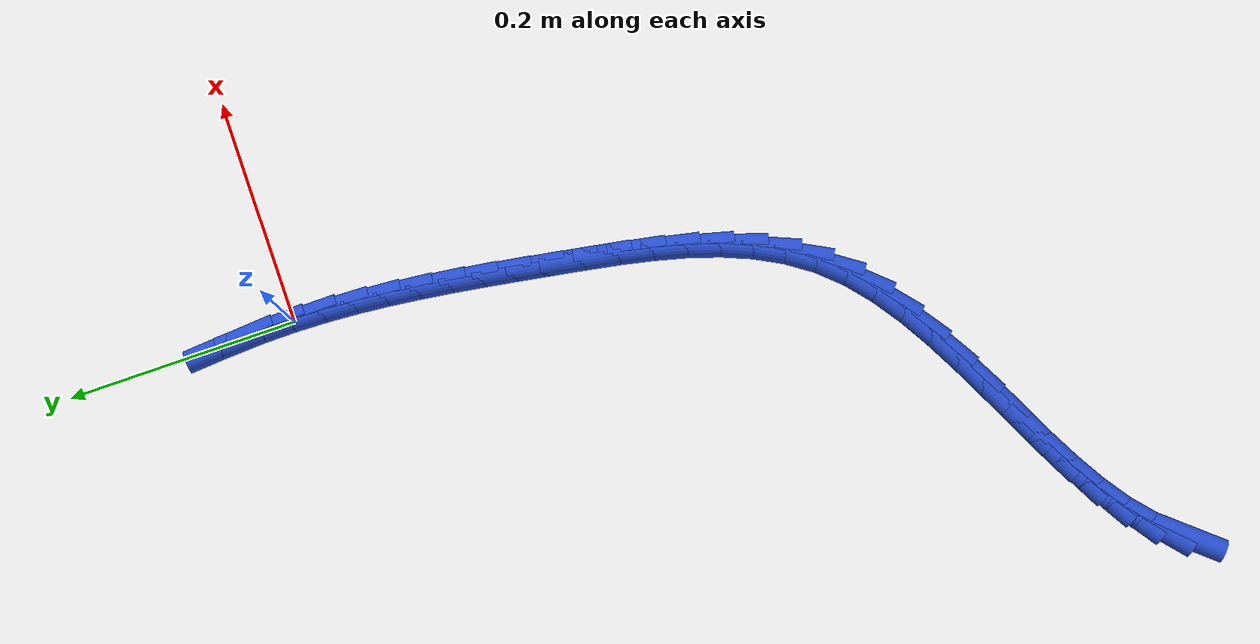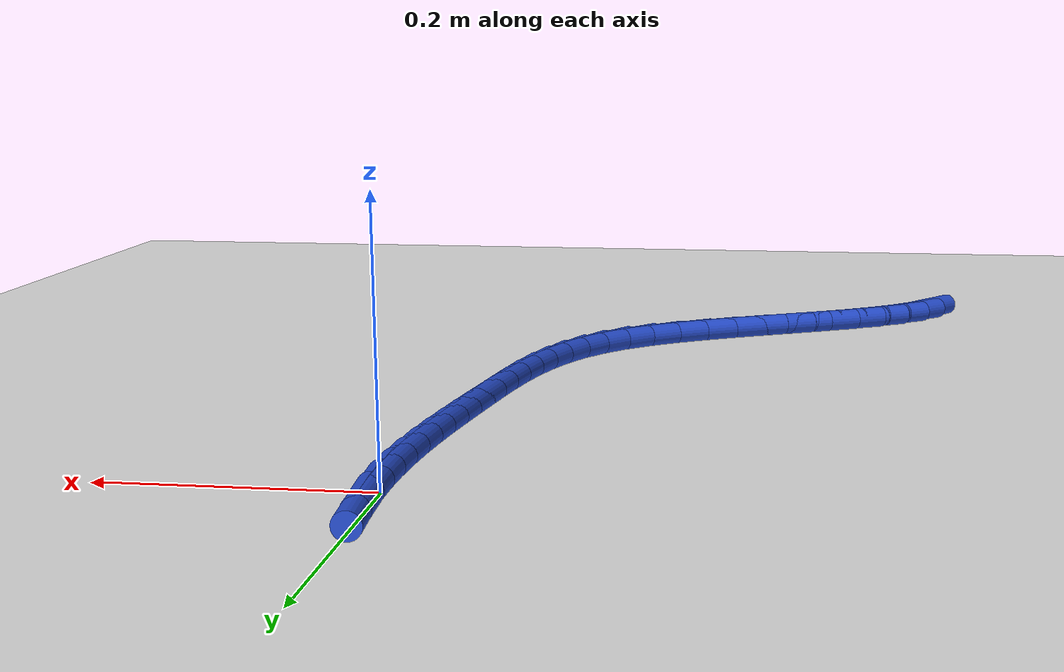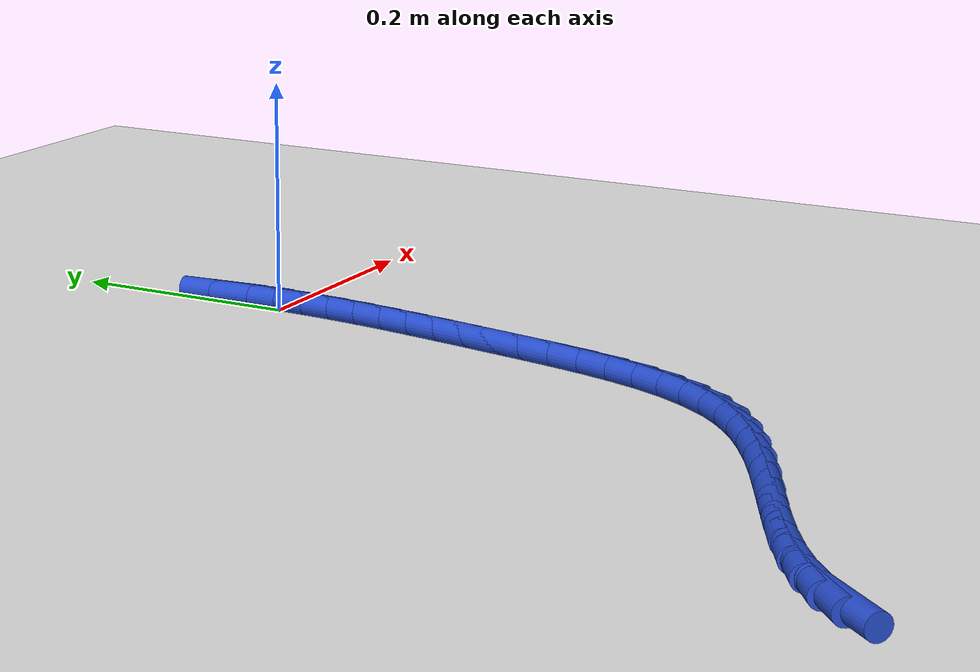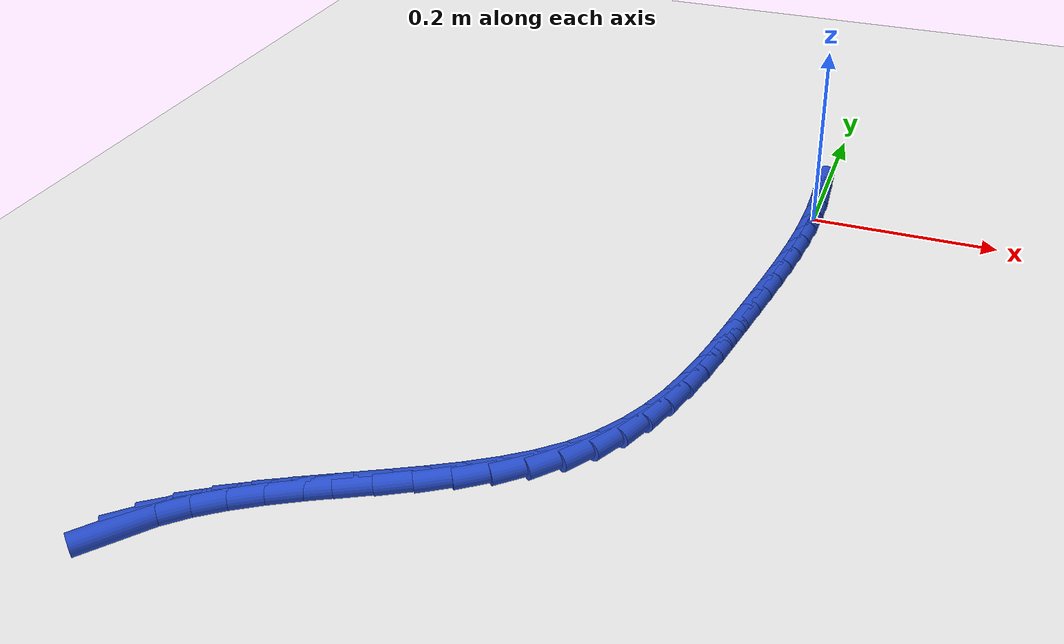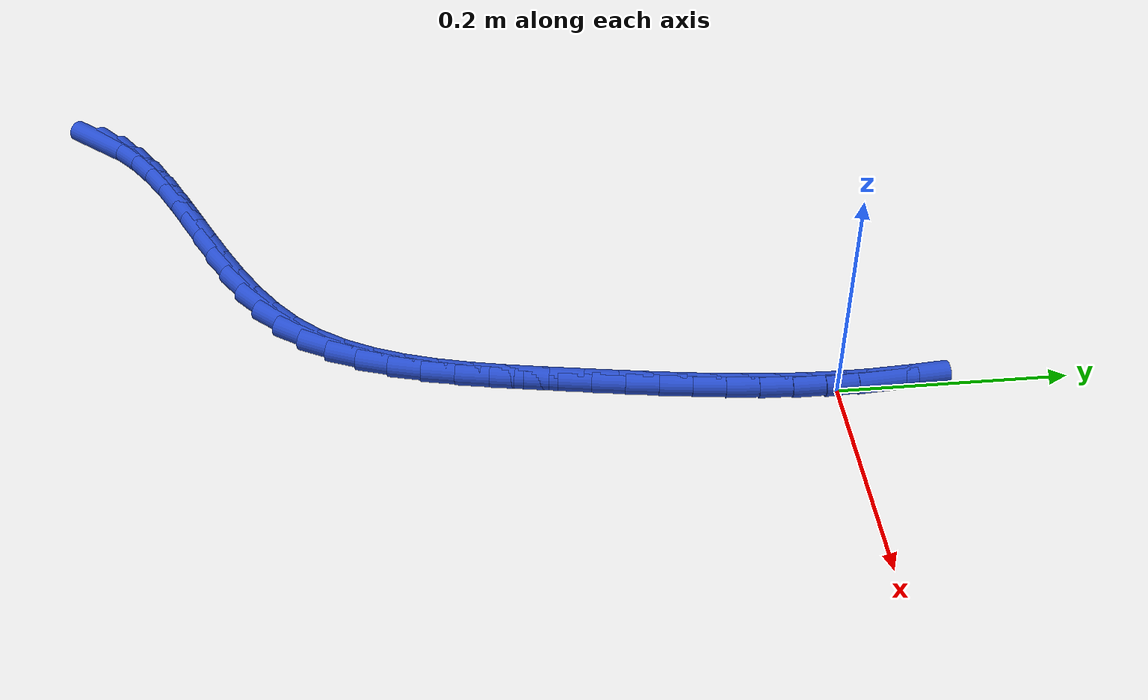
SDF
<sdf version="1.6">
 <world name="default">
  <model name="ground_plane">
   <static>1</static>
   <link name="link">
    <collision name="collision">
     <geometry><plane><normal>0 0 1</normal><size>100 100</size></plane></geometry>
     <surface><friction><ode><mu>100</mu><mu2>50</mu2></ode></friction></surface>
    </collision>
    <visual name="visual">
     <cast_shadows>0</cast_shadows>
     <geometry><plane><normal>0 0 1</normal><size>100 100</size></plane></geometry>
     <material>
      <script><uri>file://media/materials/scripts/gazebo.material</uri><name>Gazebo/WhiteGlow</name></script>
     </material>
    </visual>
   </link>
  </model>
  <model name="line">
   <link name="link_0">
    <pose>-8.673617379884035e-18 -6.245004513516506e-17 0.01 0 1.57 -1.5623915560783812</pose>
    <collision name="collision">
     <geometry><cylinder><radius>0.01</radius><length>0.08</length></cylinder></geometry>
    </collision>
    <visual name="visual">
     <material>
      <script><name>Gazebo/Blue</name><uri>file://media/materials/scripts/gazebo.material</uri></script>
     </material>
     <geometry><cylinder><radius>0.01</radius><length>0.08</length></cylinder></geometry>
    </visual>
   </link>
   <link name="link_1">
    <pose>-0.00023429637923889668 0.027875937393561537 0.01 0 1.57 -1.5269187071183319</pose>
    <collision name="collision">
     <geometry><cylinder><radius>0.01</radius><length>0.08</length></cylinder></geometry>
    </collision>
    <visual name="visual">
     <material>
      <script><name>Gazebo/Blue</name><uri>file://media/materials/scripts/gazebo.material</uri></script>
     </material>
     <geometry><cylinder><radius>0.01</radius><length>0.08</length></cylinder></geometry>
    </visual>
   </link>
   <link name="link_2">
    <pose>-0.0014614901081974074 0.05582654381114246 0.01 0 1.57 -1.4943165975662682</pose>
    <collision name="collision">
     <geometry><cylinder><radius>0.01</radius><length>0.08</length></cylinder></geometry>
    </collision>
    <visual name="visual">
     <material>
      <script><name>Gazebo/Blue</name><uri>file://media/materials/scripts/gazebo.material</uri></script>
     </material>
     <geometry><cylinder><radius>0.01</radius><length>0.08</length></cylinder></geometry>
    </visual>
   </link>
   <link name="link_241">
    <pose>-0.4143477318871749 -0.6478976613317894 0.01 0 1.57 0.8600732308170287</pose>
    <collision name="collision">
     <geometry><cylinder><radius>0.01</radius><length>0.08</length></cylinder></geometry>
    </collision>
    <visual name="visual">
     <material>
      <script><name>Gazebo/Blue</name><uri>file://media/materials/scripts/gazebo.material</uri></script>
     </material>
     <geometry><cylinder><radius>0.01</radius><length>0.08</length></cylinder></geometry>
    </visual>
   </link>
   <link name="link_242">
    <pose>-0.3980517464945279 -0.6289661603291121 0.01 0 1.57 0.7138974936900101</pose>
    <collision name="collision">
     <geometry><cylinder><radius>0.01</radius><length>0.08</length></cylinder></geometry>
    </collision>
    <visual name="visual">
     <material>
      <script><name>Gazebo/Blue</name><uri>file://media/materials/scripts/gazebo.material</uri></script>
     </material>
     <geometry><cylinder><radius>0.01</radius><length>0.08</length></cylinder></geometry>
    </visual>
   </link>
   <link name="link_243">
    <pose>-0.37818600391976653 -0.6117559033491621 0.01 0 1.57 0.6063029990217768</pose>
    <collision name="collision">
     <geometry><cylinder><radius>0.01</radius><length>0.08</length></cylinder></geometry>
    </collision>
    <visual name="visual">
     <material>
      <script><name>Gazebo/Blue</name><uri>file://media/materials/scripts/gazebo.material</uri></script>
     </material>
     <geometry><cylinder><radius>0.01</radius><length>0.08</length></cylinder></geometry>
    </visual>
   </link>
   <link name="link_244">
    <pose>-0.3553570912861107 -0.5959256486414177 0.01 0 1.57 0.5310304786338771</pose>
    <collision name="collision">
     <geometry><cylinder><radius>0.01</radius><length>0.08</length></cylinder></geometry>
    </collision>
    <visual name="visual">
     <material>
      <script><name>Gazebo/Blue</name><uri>file://media/materials/scripts/gazebo.material</uri></script>
     </material>
     <geometry><cylinder><radius>0.01</radius><length>0.08</length></cylinder></geometry>
    </visual>
   </link>
   <link name="link_245">
    <pose>-0.3301715957167829 -0.5811341544553592 0.01 0 1.57 0.48207354106126604</pose>
    <collision name="collision">
     <geometry><cylinder><radius>0.01</radius><length>0.08</length></cylinder></geometry>
    </collision>
    <visual name="visual">
     <material>
      <script><name>Gazebo/Blue</name><uri>file://media/materials/scripts/gazebo.material</uri></script>
     </material>
     <geometry><cylinder><radius>0.01</radius><length>0.08</length></cylinder></geometry>
    </visual>
   </link>
   <link name="link_246">
    <pose>-0.3032361043350037 -0.5670401790404656 0.01 0 1.57 0.45501345804249077</pose>
    <collision name="collision">
     <geometry><cylinder><radius>0.01</radius><length>0.08</length></cylinder></geometry>
    </collision>
    <visual name="visual">
     <material>
      <script><name>Gazebo/Blue</name><uri>file://media/materials/scripts/gazebo.material</uri></script>
     </material>
     <geometry><cylinder><radius>0.01</radius><length>0.08</length></cylinder></geometry>
    </visual>
   </link>
   <link name="link_247">
    <pose>-0.2751572042639931 -0.5533024806462157 0.01 0 1.57 0.44715400045383763</pose>
    <collision name="collision">
     <geometry><cylinder><radius>0.01</radius><length>0.08</length></cylinder></geometry>
    </collision>
    <visual name="visual">
     <material>
      <script><name>Gazebo/Blue</name><uri>file://media/materials/scripts/gazebo.material</uri></script>
     </material>
     <geometry><cylinder><radius>0.01</radius><length>0.08</length></cylinder></geometry>
    </visual>
   </link>
   <link name="link_248">
    <pose>-0.2465414826269743 -0.5395798175220902 0.01 0 1.57 0.45734727142948134</pose>
    <collision name="collision">
     <geometry><cylinder><radius>0.01</radius><length>0.08</length></cylinder></geometry>
    </collision>
    <visual name="visual">
     <material>
      <script><name>Gazebo/Blue</name><uri>file://media/materials/scripts/gazebo.material</uri></script>
     </material>
     <geometry><cylinder><radius>0.01</radius><length>0.08</length></cylinder></geometry>
    </visual>
   </link>
   <link name="link_249">
    <pose>-0.21799552654716656 -0.5255309479175675 0.01 0 1.57 0.4858286364641875</pose>
    <collision name="collision">
     <geometry><cylinder><radius>0.01</radius><length>0.08</length></cylinder></geometry>
    </collision>
    <visual name="visual">
     <material>
      <script><name>Gazebo/Blue</name><uri>file://media/materials/scripts/gazebo.material</uri></script>
     </material>
     <geometry><cylinder><radius>0.01</radius><length>0.08</length></cylinder></geometry>
    </visual>
   </link>
   <link name="link_250">
    <pose>-0.19012592314779272 -0.5108146300821277 0.01 0 1.57 0.5341180892887969</pose>
    <collision name="collision">
     <geometry><cylinder><radius>0.01</radius><length>0.08</length></cylinder></geometry>
    </collision>
    <visual name="visual">
     <material>
      <script><name>Gazebo/Blue</name><uri>file://media/materials/scripts/gazebo.material</uri></script>
     </material>
     <geometry><cylinder><radius>0.01</radius><length>0.08</length></cylinder></geometry>
    </visual>
   </link>
   <link name="link_251">
    <pose>-0.16353925955207232 -0.49508962226524966 0.01 0 1.57 0.6049127017023297</pose>
    <collision name="collision">
     <geometry><cylinder><radius>0.01</radius><length>0.08</length></cylinder></geometry>
    </collision>
    <visual name="visual">
     <material>
      <script><name>Gazebo/Blue</name><uri>file://media/materials/scripts/gazebo.material</uri></script>
     </material>
     <geometry><cylinder><radius>0.01</radius><length>0.08</length></cylinder></geometry>
    </visual>
   </link>
   <link name="link_252">
    <pose>-0.138842122883228 -0.47801468271641356 0.01 0 1.57 0.7017483279535316</pose>
    <collision name="collision">
     <geometry><cylinder><radius>0.01</radius><length>0.08</length></cylinder></geometry>
    </collision>
    <visual name="visual">
     <material>
      <script><name>Gazebo/Blue</name><uri>file://media/materials/scripts/gazebo.material</uri></script>
     </material>
     <geometry><cylinder><radius>0.01</radius><length>0.08</length></cylinder></geometry>
    </visual>
   </link>
   <link name="link_253">
    <pose>-0.11664110026447957 -0.459248569685098 0.01 0 1.57 0.8271925179454741</pose>
    <collision name="collision">
     <geometry><cylinder><radius>0.01</radius><length>0.08</length></cylinder></geometry>
    </collision>
    <visual name="visual">
     <material>
      <script><name>Gazebo/Blue</name><uri>file://media/materials/scripts/gazebo.material</uri></script>
     </material>
     <geometry><cylinder><radius>0.01</radius><length>0.08</length></cylinder></geometry>
    </visual>
   </link>
   <link name="link_254">
    <pose>-0.09752353007571385 -0.4384622713262187 0.01 0 1.57 0.9618030701631578</pose>
    <collision name="collision">
     <geometry><cylinder><radius>0.01</radius><length>0.08</length></cylinder></geometry>
    </collision>
    <visual name="visual">
     <material>
      <script><name>Gazebo/Blue</name><uri>file://media/materials/scripts/gazebo.material</uri></script>
     </material>
     <geometry><cylinder><radius>0.01</radius><length>0.08</length></cylinder></geometry>
    </visual>
   </link>
   <link name="link_255">
    <pose>-0.08159971989015961 -0.41562986267955515 0.01 0 1.57 1.0807547001051847</pose>
    <collision name="collision">
     <geometry><cylinder><radius>0.01</radius><length>0.08</length></cylinder></geometry>
    </collision>
    <visual name="visual">
     <material>
      <script><name>Gazebo/Blue</name><uri>file://media/materials/scripts/gazebo.material</uri></script>
     </material>
     <geometry><cylinder><radius>0.01</radius><length>0.08</length></cylinder></geometry>
    </visual>
   </link>
   <link name="link_256">
    <pose>-0.06848306918752804 -0.3910411349273865 0.01 0 1.57 1.1802956794013562</pose>
    <collision name="collision">
     <geometry><cylinder><radius>0.01</radius><length>0.08</length></cylinder></geometry>
    </collision>
    <visual name="visual">
     <material>
      <script><name>Gazebo/Blue</name><uri>file://media/materials/scripts/gazebo.material</uri></script>
     </material>
     <geometry><cylinder><radius>0.01</radius><length>0.08</length></cylinder></geometry>
    </visual>
   </link>
   <link name="link_257">
    <pose>-0.05776375116973648 -0.3650006363286496 0.01 0 1.57 1.2600346988999394</pose>
    <collision name="collision">
     <geometry><cylinder><radius>0.01</radius><length>0.08</length></cylinder></geometry>
    </collision>
    <visual name="visual">
     <material>
      <script><name>Gazebo/Blue</name><uri>file://media/materials/scripts/gazebo.material</uri></script>
     </material>
     <geometry><cylinder><radius>0.01</radius><length>0.08</length></cylinder></geometry>
    </visual>
   </link>
   <link name="link_258">
    <pose>-0.04903193903870263 -0.3378129151422814 0.01 0 1.57 1.3209035708387444</pose>
    <collision name="collision">
     <geometry><cylinder><radius>0.01</radius><length>0.08</length></cylinder></geometry>
    </collision>
    <visual name="visual">
     <material>
      <script><name>Gazebo/Blue</name><uri>file://media/materials/scripts/gazebo.material</uri></script>
     </material>
     <geometry><cylinder><radius>0.01</radius><length>0.08</length></cylinder></geometry>
    </visual>
   </link>
   <link name="link_259">
    <pose>-0.04187780599634489 -0.3097825196272215 0.01 0 1.57 1.3642436463613523</pose>
    <collision name="collision">
     <geometry><cylinder><radius>0.01</radius><length>0.08</length></cylinder></geometry>
    </collision>
    <visual name="visual">
     <material>
      <script><name>Gazebo/Blue</name><uri>file://media/materials/scripts/gazebo.material</uri></script>
     </material>
     <geometry><cylinder><radius>0.01</radius><length>0.08</length></cylinder></geometry>
    </visual>
   </link>
   <link name="link_260">
    <pose>-0.035891525244580724 -0.28121399804240577 0.01 0 1.57 1.3912281822028303</pose>
    <collision name="collision">
     <geometry><cylinder><radius>0.01</radius><length>0.08</length></cylinder></geometry>
    </collision>
    <visual name="visual">
     <material>
      <script><name>Gazebo/Blue</name><uri>file://media/materials/scripts/gazebo.material</uri></script>
     </material>
     <geometry><cylinder><radius>0.01</radius><length>0.08</length></cylinder></geometry>
    </visual>
   </link>
   <link name="link_261">
    <pose>-0.030663269985328374 -0.2524118986467738 0.01 0 1.57 1.4025970679966673</pose>
    <collision name="collision">
     <geometry><cylinder><radius>0.01</radius><length>0.08</length></cylinder></geometry>
    </collision>
    <visual name="visual">
     <material>
      <script><name>Gazebo/Blue</name><uri>file://media/materials/scripts/gazebo.material</uri></script>
     </material>
     <geometry><cylinder><radius>0.01</radius><length>0.08</length></cylinder></geometry>
    </visual>
   </link>
   <link name="link_262">
    <pose>-0.02578447926183719 -0.22367993430470873 0.01 0 1.57 1.404706277740541</pose>
    <collision name="collision">
     <geometry><cylinder><radius>0.01</radius><length>0.08</length></cylinder></geometry>
    </collision>
    <visual name="visual">
     <material>
      <script><name>Gazebo/Blue</name><uri>file://media/materials/scripts/gazebo.material</uri></script>
     </material>
     <geometry><cylinder><radius>0.01</radius><length>0.08</length></cylinder></geometry>
    </visual>
   </link>
   <link name="link_263">
    <pose>-0.021012347518791497 -0.1952124272674143 0.01 0 1.57 1.4099577687027274</pose>
    <collision name="collision">
     <geometry><cylinder><radius>0.01</radius><length>0.08</length></cylinder></geometry>
    </collision>
    <visual name="visual">
     <material>
      <script><name>Gazebo/Blue</name><uri>file://media/materials/scripts/gazebo.material</uri></script>
     </material>
     <geometry><cylinder><radius>0.01</radius><length>0.08</length></cylinder></geometry>
    </visual>
   </link>
   <link name="link_264">
    <pose>-0.016432994104588337 -0.16698662512911497 0.01 0 1.57 1.4199252941118872</pose>
    <collision name="collision">
     <geometry><cylinder><radius>0.01</radius><length>0.08</length></cylinder></geometry>
    </collision>
    <visual name="visual">
     <material>
      <script><name>Gazebo/Blue</name><uri>file://media/materials/scripts/gazebo.material</uri></script>
     </material>
     <geometry><cylinder><radius>0.01</radius><length>0.08</length></cylinder></geometry>
    </visual>
   </link>
   <link name="link_265">
    <pose>-0.012171325831280394 -0.13895417761877246 0.01 0 1.57 1.434696836129632</pose>
    <collision name="collision">
     <geometry><cylinder><radius>0.01</radius><length>0.08</length></cylinder></geometry>
    </collision>
    <visual name="visual">
     <material>
      <script><name>Gazebo/Blue</name><uri>file://media/materials/scripts/gazebo.material</uri></script>
     </material>
     <geometry><cylinder><radius>0.01</radius><length>0.08</length></cylinder></geometry>
    </visual>
   </link>
   <link name="link_266">
    <pose>-0.008352249510919778 -0.11106673446534511 0.01 0 1.57 1.4543238946528385</pose>
    <collision name="collision">
     <geometry><cylinder><radius>0.01</radius><length>0.08</length></cylinder></geometry>
    </collision>
    <visual name="visual">
     <material>
      <script><name>Gazebo/Blue</name><uri>file://media/materials/scripts/gazebo.material</uri></script>
     </material>
     <geometry><cylinder><radius>0.01</radius><length>0.08</length></cylinder></geometry>
    </visual>
   </link>
   <link name="link_267">
    <pose>-0.005100671955559119 -0.08327594539779473 0.01 0 1.57 1.4788092667444281</pose>
    <collision name="collision">
     <geometry><cylinder><radius>0.01</radius><length>0.08</length></cylinder></geometry>
    </collision>
    <visual name="visual">
     <material>
      <script><name>Gazebo/Blue</name><uri>file://media/materials/scripts/gazebo.material</uri></script>
     </material>
     <geometry><cylinder><radius>0.01</radius><length>0.08</length></cylinder></geometry>
    </visual>
   </link>
   <link name="link_268">
    <pose>-0.0025414999772506836 -0.055533460145080524 0.01 0 1.57 1.5080920245877594</pose>
    <collision name="collision">
     <geometry><cylinder><radius>0.01</radius><length>0.08</length></cylinder></geometry>
    </collision>
    <visual name="visual">
     <material>
      <script><name>Gazebo/Blue</name><uri>file://media/materials/scripts/gazebo.material</uri></script>
     </material>
     <geometry><cylinder><radius>0.01</radius><length>0.08</length></cylinder></geometry>
    </visual>
   </link>
   <link name="link_269">
    <pose>-0.0007996403880468181 -0.027790928436161714 0.01 0 1.57 1.5420308315154563</pose>
    <collision name="collision">
     <geometry><cylinder><radius>0.01</radius><length>0.08</length></cylinder></geometry>
    </collision>
    <visual name="visual">
     <material>
      <script><name>Gazebo/Blue</name><uri>file://media/materials/scripts/gazebo.material</uri></script>
     </material>
     <geometry><cylinder><radius>0.01</radius><length>0.08</length></cylinder></geometry>
    </visual>
   </link>
   <link name="link_270">
    <pose>-1.3010426069826053e-17 -3.469446951953614e-17 0.01 0 1.57 -1.5612050855467698</pose>
    <collision name="collision">
     <geometry><cylinder><radius>0.01</radius><length>0.08</length></cylinder></geometry>
    </collision>
    <visual name="visual">
     <material>
      <script><name>Gazebo/Blue</name><uri>file://media/materials/scripts/gazebo.material</uri></script>
     </material>
     <geometry><cylinder><radius>0.01</radius><length>0.08</length></cylinder></geometry>
    </visual>
   </link>
   <link name="link_271">
    <pose>-0.000267485625162614 0.027887675434446105 0.01 0 1.57 -1.5187785753808565</pose>
    <collision name="collision">
     <geometry><cylinder><radius>0.01</radius><length>0.08</length></cylinder></geometry>
    </collision>
    <visual name="visual">
     <material>
      <script><name>Gazebo/Blue</name><uri>file://media/materials/scripts/gazebo.material</uri></script>
     </material>
     <geometry><cylinder><radius>0.01</radius><length>0.08</length></cylinder></geometry>
    </visual>
   </link>
  </model>
 </world>
</sdf>
